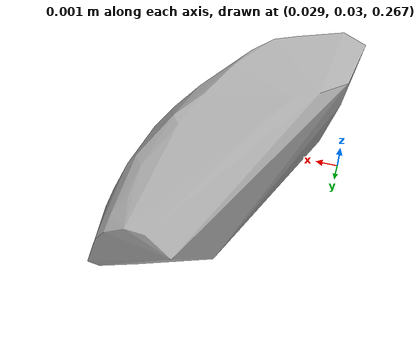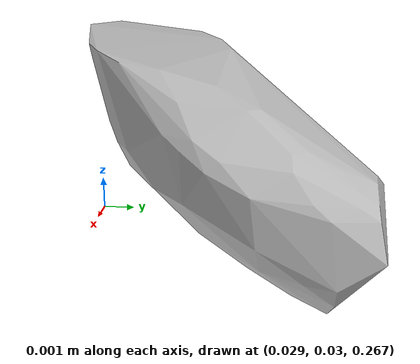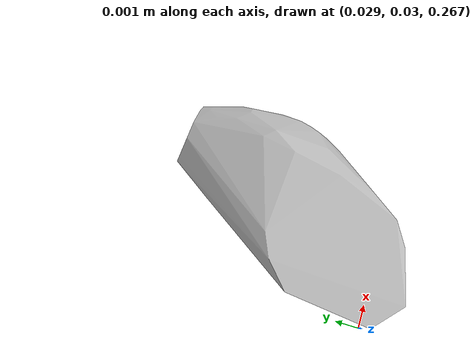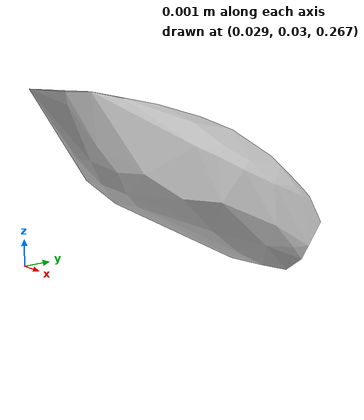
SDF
<?xml version="1.0"?>
<sdf version="1.7">
  <model name="vascular_partexport024">
    <link name="vascular_partexport024_body">
      <visual name="vascular_partexport024_visual">
        <geometry>
          <mesh>
            <uri>vascular_partexport024.obj</uri>
          </mesh>
        </geometry>
      </visual>
      <collision name="vascular_partexport024_collision">
        <geometry>
          <mesh>
            <uri>vascular_partexport024.obj</uri>
          </mesh>
        </geometry>
      </collision>
    </link>
    <frame name="vascular_partexport024_center">
      <pose relative_to="vascular_partexport024_body">0 0 0 0 0 0</pose>
    </frame>
  </model>
</sdf>
